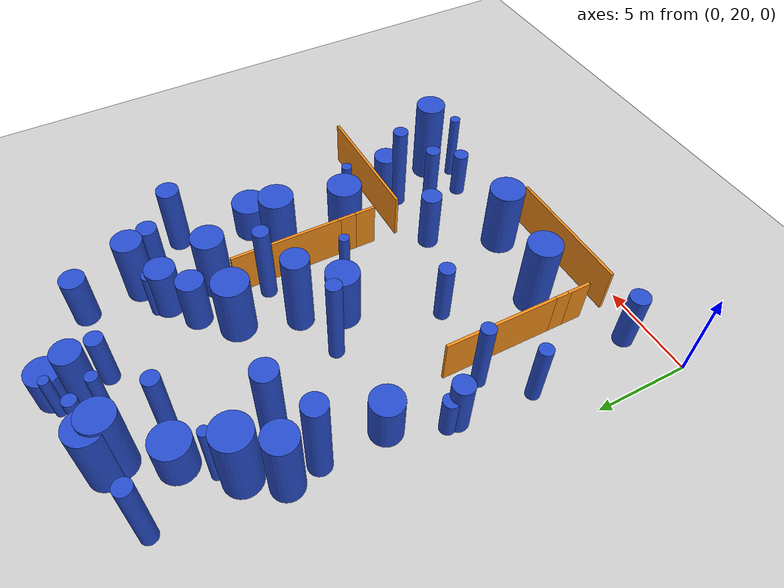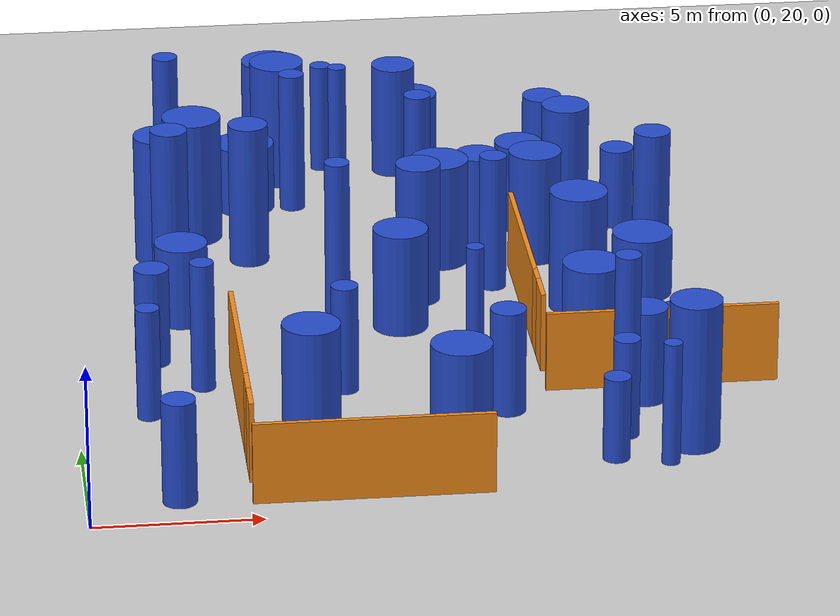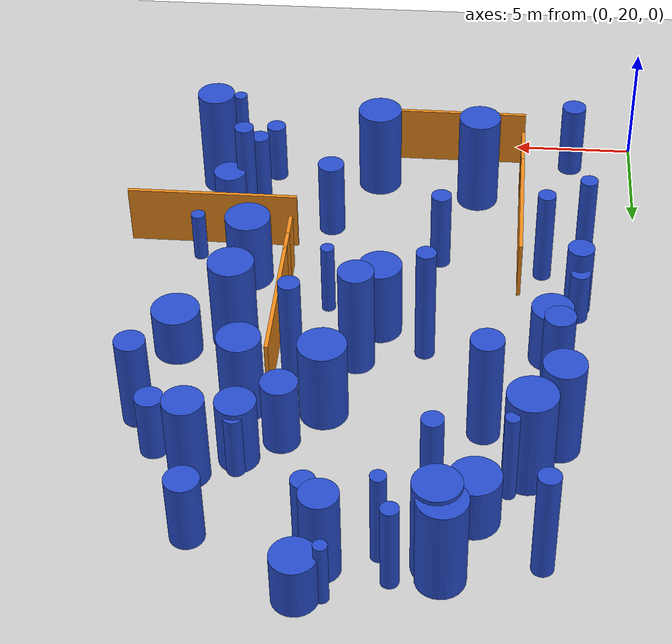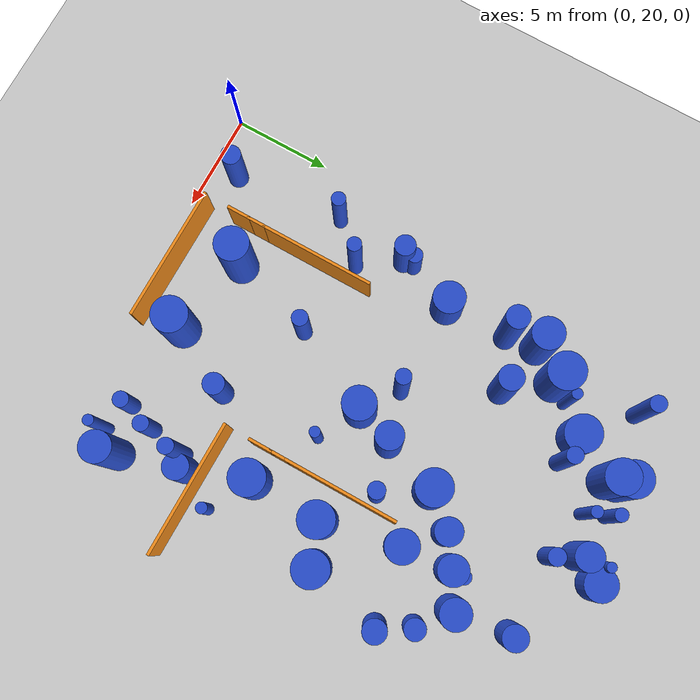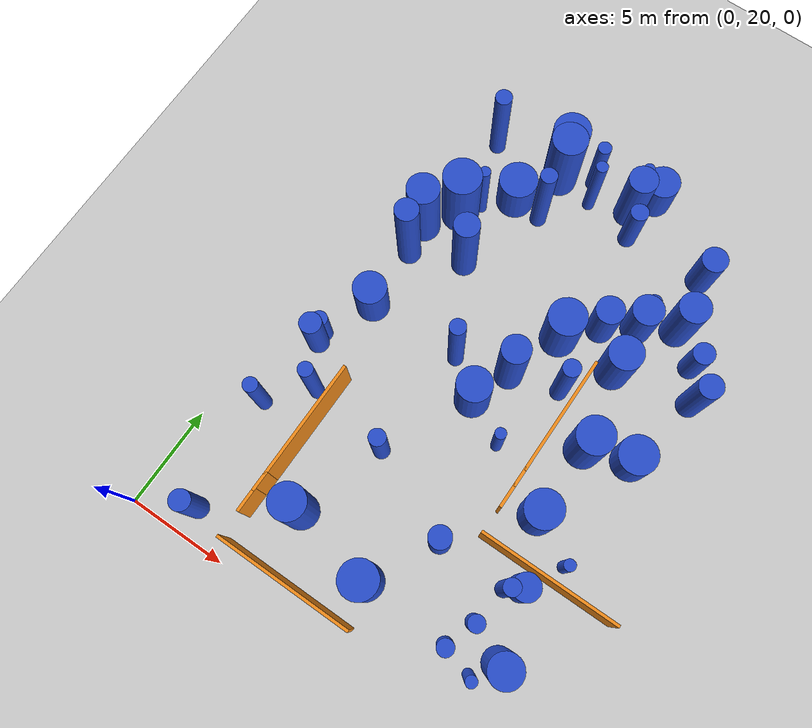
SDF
<sdf version="1.6">
 <world name="default">
  <model name="ground_plane">
   <static>1</static>
   <link name="link">
    <collision name="collision">
     <geometry><plane><normal>0 0 1</normal><size>100 100</size></plane></geometry>
     <surface><friction><ode><mu>100</mu><mu2>50</mu2></ode></friction></surface>
    </collision>
    <visual name="visual">
     <cast_shadows>0</cast_shadows>
     <geometry><plane><normal>0 0 1</normal><size>100 100</size></plane></geometry>
     <material>
      <script><uri>file://media/materials/scripts/gazebo.material</uri><name>Gazebo/Grey</name></script>
     </material>
    </visual>
   </link>
  </model>
  <model name="3">
   <static>0</static>
   <link name="link">
    <inertial>
     <mass>2</mass>
     <inertia><ixx>1.27106</ixx><ixy>0</ixy><ixz>0</ixz><iyy>1.27106</iyy><iyz>0</iyz><izz>0.895913</izz></inertia>
    </inertial>
    <collision name="collision">
     <geometry><cylinder><length>2.2223</length><radius>0.946527</radius></cylinder></geometry>
     <surface><contact><collide_without_contact>1</collide_without_contact></contact></surface>
    </collision>
    <visual name="visual">
     <geometry><cylinder><length>2.2223</length><radius>0.946527</radius></cylinder></geometry>
     <material>
      <script><uri>file://media/materials/scripts/gazebo.material</uri><name>Gazebo/Blue</name></script>
     </material>
    </visual>
    <gravity>0</gravity>
   </link>
   <pose>6.2225 42.677 1.11115 0 -0 0</pose>
  </model>
  <model name="9">
   <static>0</static>
   <link name="link">
    <inertial>
     <mass>2</mass>
     <inertia><ixx>2.4622</ixx><ixy>0</ixy><ixz>0</ixz><iyy>2.4622</iyy><iyz>0</iyz><izz>0.0741787</izz></inertia>
    </inertial>
    <collision name="collision">
     <geometry><cylinder><length>3.81453</length><radius>0.272358</radius></cylinder></geometry>
     <surface><contact><collide_without_contact>1</collide_without_contact></contact></surface>
    </collision>
    <visual name="visual">
     <geometry><cylinder><length>3.81453</length><radius>0.272358</radius></cylinder></geometry>
     <material>
      <script><uri>file://media/materials/scripts/gazebo.material</uri><name>Gazebo/Blue</name></script>
     </material>
    </visual>
    <gravity>0</gravity>
   </link>
   <pose>16.9794 22.3718 1.90727 0 -0 0</pose>
  </model>
  <model name="13">
   <static>0</static>
   <link name="link">
    <inertial>
     <mass>2</mass>
     <inertia><ixx>1.65318</ixx><ixy>0</ixy><ixz>0</ixz><iyy>1.65318</iyy><iyz>0</iyz><izz>0.578017</izz></inertia>
    </inertial>
    <collision name="collision">
     <geometry><cylinder><length>2.86095</length><radius>0.760275</radius></cylinder></geometry>
     <surface><contact><collide_without_contact>1</collide_without_contact></contact></surface>
    </collision>
    <visual name="visual">
     <geometry><cylinder><length>2.86095</length><radius>0.760275</radius></cylinder></geometry>
     <material>
      <script><uri>file://media/materials/scripts/gazebo.material</uri><name>Gazebo/Blue</name></script>
     </material>
    </visual>
    <gravity>0</gravity>
   </link>
   <pose>14.8082 40.254 1.43047 0 -0 0</pose>
  </model>
  <model name="15">
   <static>0</static>
   <link name="link">
    <inertial>
     <mass>2</mass>
     <inertia><ixx>2.02878</ixx><ixy>0</ixy><ixz>0</ixz><iyy>2.02878</iyy><iyz>0</iyz><izz>0.837732</izz></inertia>
    </inertial>
    <collision name="collision">
     <geometry><cylinder><length>3.10797</length><radius>0.915277</radius></cylinder></geometry>
     <surface><contact><collide_without_contact>1</collide_without_contact></contact></surface>
    </collision>
    <visual name="visual">
     <geometry><cylinder><length>3.10797</length><radius>0.915277</radius></cylinder></geometry>
     <material>
      <script><uri>file://media/materials/scripts/gazebo.material</uri><name>Gazebo/Blue</name></script>
     </material>
    </visual>
    <gravity>0</gravity>
   </link>
   <pose>15.7285 29.9287 1.55399 0 -0 0</pose>
  </model>
  <model name="21">
   <static>0</static>
   <link name="link">
    <inertial>
     <mass>2</mass>
     <inertia>
      <ixx>0.942504</ixx>
      <ixy>0</ixy>
      <ixz>0</ixz>
      <iyy>0.942504</iyy>
      <iyz>0</iyz>
      <izz>0.157121</izz>
     </inertia>
    </inertial>
    <collision name="collision">
     <geometry><cylinder><length>2.27677</length><radius>0.396385</radius></cylinder></geometry>
     <surface><contact><collide_without_contact>1</collide_without_contact></contact></surface>
    </collision>
    <visual name="visual">
     <geometry><cylinder><length>2.27677</length><radius>0.396385</radius></cylinder></geometry>
     <material>
      <script><uri>file://media/materials/scripts/gazebo.material</uri><name>Gazebo/Blue</name></script>
     </material>
    </visual>
    <gravity>0</gravity>
   </link>
   <pose>2.46046 31.5423 1.13838 0 -0 0</pose>
  </model>
  <model name="29">
   <static>0</static>
   <link name="link">
    <inertial>
     <mass>2</mass>
     <inertia><ixx>1.13627</ixx><ixy>0</ixy><ixz>0</ixz><iyy>1.13627</iyy><iyz>0</iyz><izz>0.890575</izz></inertia>
    </inertial>
    <collision name="collision">
     <geometry><cylinder><length>2.03615</length><radius>0.943703</radius></cylinder></geometry>
     <surface><contact><collide_without_contact>1</collide_without_contact></contact></surface>
    </collision>
    <visual name="visual">
     <geometry><cylinder><length>2.03615</length><radius>0.943703</radius></cylinder></geometry>
     <material>
      <script><uri>file://media/materials/scripts/gazebo.material</uri><name>Gazebo/Blue</name></script>
     </material>
    </visual>
    <gravity>0</gravity>
   </link>
   <pose>17.9595 34.4953 1.01807 0 -0 0</pose>
  </model>
  <model name="33">
   <static>0</static>
   <link name="link">
    <inertial>
     <mass>2</mass>
     <inertia><ixx>3.34107</ixx><ixy>0</ixy><ixz>0</ixz><iyy>3.34107</iyy><iyz>0</iyz><izz>0.741521</izz></inertia>
    </inertial>
    <collision name="collision">
     <geometry><cylinder><length>4.22159</length><radius>0.861116</radius></cylinder></geometry>
     <surface><contact><collide_without_contact>1</collide_without_contact></contact></surface>
    </collision>
    <visual name="visual">
     <geometry><cylinder><length>4.22159</length><radius>0.861116</radius></cylinder></geometry>
     <material>
      <script><uri>file://media/materials/scripts/gazebo.material</uri><name>Gazebo/Blue</name></script>
     </material>
    </visual>
    <gravity>0</gravity>
   </link>
   <pose>6.66878 23.9628 2.1108 0 -0 0</pose>
  </model>
  <model name="34">
   <static>0</static>
   <link name="link">
    <inertial>
     <mass>2</mass>
     <inertia><ixx>1.44194</ixx><ixy>0</ixy><ixz>0</ixz><iyy>1.44194</iyy><iyz>0</iyz><izz>0.671354</izz></inertia>
    </inertial>
    <collision name="collision">
     <geometry><cylinder><length>2.57635</length><radius>0.819362</radius></cylinder></geometry>
     <surface><contact><collide_without_contact>1</collide_without_contact></contact></surface>
    </collision>
    <visual name="visual">
     <geometry><cylinder><length>2.57635</length><radius>0.819362</radius></cylinder></geometry>
     <material>
      <script><uri>file://media/materials/scripts/gazebo.material</uri><name>Gazebo/Blue</name></script>
     </material>
    </visual>
    <gravity>0</gravity>
   </link>
   <pose>3.57515 34.0262 1.28817 0 -0 0</pose>
  </model>
  <model name="49">
   <static>0</static>
   <link name="link">
    <inertial>
     <mass>2</mass>
     <inertia><ixx>2.53938</ixx><ixy>0</ixy><ixz>0</ixz><iyy>2.53938</iyy><iyz>0</iyz><izz>0.580052</izz></inertia>
    </inertial>
    <collision name="collision">
     <geometry><cylinder><length>3.67371</length><radius>0.761611</radius></cylinder></geometry>
     <surface><contact><collide_without_contact>1</collide_without_contact></contact></surface>
    </collision>
    <visual name="visual">
     <geometry><cylinder><length>3.67371</length><radius>0.761611</radius></cylinder></geometry>
     <material>
      <script><uri>file://media/materials/scripts/gazebo.material</uri><name>Gazebo/Blue</name></script>
     </material>
    </visual>
    <gravity>0</gravity>
   </link>
   <pose>16.4595 41.1875 1.83685 0 -0 0</pose>
  </model>
  <model name="52">
   <static>0</static>
   <link name="link">
    <inertial>
     <mass>2</mass>
     <inertia><ixx>3.32112</ixx><ixy>0</ixy><ixz>0</ixz><iyy>3.32112</iyy><iyz>0</iyz><izz>0.180098</izz></inertia>
    </inertial>
    <collision name="collision">
     <geometry><cylinder><length>4.40301</length><radius>0.42438</radius></cylinder></geometry>
     <surface><contact><collide_without_contact>1</collide_without_contact></contact></surface>
    </collision>
    <visual name="visual">
     <geometry><cylinder><length>4.40301</length><radius>0.42438</radius></cylinder></geometry>
     <material>
      <script><uri>file://media/materials/scripts/gazebo.material</uri><name>Gazebo/Blue</name></script>
     </material>
    </visual>
    <gravity>0</gravity>
   </link>
   <pose>13.3984 35.4669 2.2015 0 -0 0</pose>
  </model>
  <model name="58">
   <static>0</static>
   <link name="link">
    <inertial>
     <mass>2</mass>
     <inertia><ixx>2.13713</ixx><ixy>0</ixy><ixz>0</ixz><iyy>2.13713</iyy><iyz>0</iyz><izz>0.129492</izz></inertia>
    </inertial>
    <collision name="collision">
     <geometry><cylinder><length>3.52623</length><radius>0.35985</radius></cylinder></geometry>
     <surface><contact><collide_without_contact>1</collide_without_contact></contact></surface>
    </collision>
    <visual name="visual">
     <geometry><cylinder><length>3.52623</length><radius>0.35985</radius></cylinder></geometry>
     <material>
      <script><uri>file://media/materials/scripts/gazebo.material</uri><name>Gazebo/Blue</name></script>
     </material>
    </visual>
    <gravity>0</gravity>
   </link>
   <pose>2.13297 27.1405 1.76312 0 -0 0</pose>
  </model>
  <model name="59">
   <static>0</static>
   <link name="link">
    <inertial>
     <mass>2</mass>
     <inertia><ixx>1.95679</ixx><ixy>0</ixy><ixz>0</ixz><iyy>1.95679</iyy><iyz>0</iyz><izz>0.291907</izz></inertia>
    </inertial>
    <collision name="collision">
     <geometry><cylinder><length>3.29622</length><radius>0.540284</radius></cylinder></geometry>
     <surface><contact><collide_without_contact>1</collide_without_contact></contact></surface>
    </collision>
    <visual name="visual">
     <geometry><cylinder><length>3.29622</length><radius>0.540284</radius></cylinder></geometry>
     <material>
      <script><uri>file://media/materials/scripts/gazebo.material</uri><name>Gazebo/Blue</name></script>
     </material>
    </visual>
    <gravity>0</gravity>
   </link>
   <pose>12.7214 26.4089 1.64811 0 -0 0</pose>
  </model>
  <model name="63">
   <static>0</static>
   <link name="link">
    <inertial>
     <mass>2</mass>
     <inertia><ixx>3.63749</ixx><ixy>0</ixy><ixz>0</ixz><iyy>3.63749</iyy><iyz>0</iyz><izz>0.165125</izz></inertia>
    </inertial>
    <collision name="collision">
     <geometry><cylinder><length>4.61839</length><radius>0.406356</radius></cylinder></geometry>
     <surface><contact><collide_without_contact>1</collide_without_contact></contact></surface>
    </collision>
    <visual name="visual">
     <geometry><cylinder><length>4.61839</length><radius>0.406356</radius></cylinder></geometry>
     <material>
      <script><uri>file://media/materials/scripts/gazebo.material</uri><name>Gazebo/Blue</name></script>
     </material>
    </visual>
    <gravity>0</gravity>
   </link>
   <pose>7.74254 42.4668 2.3092 0 -0 0</pose>
  </model>
  <model name="65">
   <static>0</static>
   <link name="link">
    <inertial>
     <mass>2</mass>
     <inertia><ixx>2.6533</ixx><ixy>0</ixy><ixz>0</ixz><iyy>2.6533</iyy><iyz>0</iyz><izz>0.0866099</izz></inertia>
    </inertial>
    <collision name="collision">
     <geometry><cylinder><length>3.95727</length><radius>0.294296</radius></cylinder></geometry>
     <surface><contact><collide_without_contact>1</collide_without_contact></contact></surface>
    </collision>
    <visual name="visual">
     <geometry><cylinder><length>3.95727</length><radius>0.294296</radius></cylinder></geometry>
     <material>
      <script><uri>file://media/materials/scripts/gazebo.material</uri><name>Gazebo/Blue</name></script>
     </material>
    </visual>
    <gravity>0</gravity>
   </link>
   <pose>9.41371 44.5715 1.97863 0 -0 0</pose>
  </model>
  <model name="73">
   <static>0</static>
   <link name="link">
    <inertial>
     <mass>2</mass>
     <inertia><ixx>3.46252</ixx><ixy>0</ixy><ixz>0</ixz><iyy>3.46252</iyy><iyz>0</iyz><izz>0.167868</izz></inertia>
    </inertial>
    <collision name="collision">
     <geometry><cylinder><length>4.50239</length><radius>0.409717</radius></cylinder></geometry>
     <surface><contact><collide_without_contact>1</collide_without_contact></contact></surface>
    </collision>
    <visual name="visual">
     <geometry><cylinder><length>4.50239</length><radius>0.409717</radius></cylinder></geometry>
     <material>
      <script><uri>file://media/materials/scripts/gazebo.material</uri><name>Gazebo/Blue</name></script>
     </material>
    </visual>
    <gravity>0</gravity>
   </link>
   <pose>3.82424 44.7196 2.25119 0 -0 0</pose>
  </model>
  <model name="88">
   <static>0</static>
   <link name="link">
    <inertial>
     <mass>2</mass>
     <inertia><ixx>2.81885</ixx><ixy>0</ixy><ixz>0</ixz><iyy>2.81885</iyy><iyz>0</iyz><izz>0.82529</izz></inertia>
    </inertial>
    <collision name="collision">
     <geometry><cylinder><length>3.79964</length><radius>0.908455</radius></cylinder></geometry>
     <surface><contact><collide_without_contact>1</collide_without_contact></contact></surface>
    </collision>
    <visual name="visual">
     <geometry><cylinder><length>3.79964</length><radius>0.908455</radius></cylinder></geometry>
     <material>
      <script><uri>file://media/materials/scripts/gazebo.material</uri><name>Gazebo/Blue</name></script>
     </material>
    </visual>
    <gravity>0</gravity>
   </link>
   <pose>10.9315 23.045 1.89982 0 -0 0</pose>
  </model>
  <model name="99">
   <static>0</static>
   <link name="link">
    <inertial>
     <mass>2</mass>
     <inertia><ixx>2.01084</ixx><ixy>0</ixy><ixz>0</ixz><iyy>2.01084</iyy><iyz>0</iyz><izz>0.169037</izz></inertia>
    </inertial>
    <collision name="collision">
     <geometry><cylinder><length>3.39969</length><radius>0.411142</radius></cylinder></geometry>
     <surface><contact><collide_without_contact>1</collide_without_contact></contact></surface>
    </collision>
    <visual name="visual">
     <geometry><cylinder><length>3.39969</length><radius>0.411142</radius></cylinder></geometry>
     <material>
      <script><uri>file://media/materials/scripts/gazebo.material</uri><name>Gazebo/Blue</name></script>
     </material>
    </visual>
    <gravity>0</gravity>
   </link>
   <pose>8.06943 28.385 1.69985 0 -0 0</pose>
  </model>
  <model name="101">
   <static>0</static>
   <link name="link">
    <inertial>
     <mass>2</mass>
     <inertia><ixx>2.85249</ixx><ixy>0</ixy><ixz>0</ixz><iyy>2.85249</iyy><iyz>0</iyz><izz>0.131371</izz></inertia>
    </inertial>
    <collision name="collision">
     <geometry><cylinder><length>4.08911</length><radius>0.362452</radius></cylinder></geometry>
     <surface><contact><collide_without_contact>1</collide_without_contact></contact></surface>
    </collision>
    <visual name="visual">
     <geometry><cylinder><length>4.08911</length><radius>0.362452</radius></cylinder></geometry>
     <material>
      <script><uri>file://media/materials/scripts/gazebo.material</uri><name>Gazebo/Blue</name></script>
     </material>
    </visual>
    <gravity>0</gravity>
   </link>
   <pose>3.87288 28.9892 2.04456 0 -0 0</pose>
  </model>
  <model name="112">
   <static>0</static>
   <link name="link">
    <inertial>
     <mass>2</mass>
     <inertia><ixx>2.52955</ixx><ixy>0</ixy><ixz>0</ixz><iyy>2.52955</iyy><iyz>0</iyz><izz>0.495649</izz></inertia>
    </inertial>
    <collision name="collision">
     <geometry><cylinder><length>3.70005</length><radius>0.704024</radius></cylinder></geometry>
     <surface><contact><collide_without_contact>1</collide_without_contact></contact></surface>
    </collision>
    <visual name="visual">
     <geometry><cylinder><length>3.70005</length><radius>0.704024</radius></cylinder></geometry>
     <material>
      <script><uri>file://media/materials/scripts/gazebo.material</uri><name>Gazebo/Blue</name></script>
     </material>
    </visual>
    <gravity>0</gravity>
   </link>
   <pose>11.3212 45.2536 1.85003 0 -0 0</pose>
  </model>
  <model name="115">
   <static>0</static>
   <link name="link">
    <inertial>
     <mass>2</mass>
     <inertia>
      <ixx>2.45331</ixx>
      <ixy>0</ixy>
      <ixz>0</ixz>
      <iyy>2.45331</iyy>
      <iyz>0</iyz>
      <izz>0.0722573</izz>
     </inertia>
    </inertial>
    <collision name="collision">
     <geometry><cylinder><length>3.8083</length><radius>0.268807</radius></cylinder></geometry>
     <surface><contact><collide_without_contact>1</collide_without_contact></contact></surface>
    </collision>
    <visual name="visual">
     <geometry><cylinder><length>3.8083</length><radius>0.268807</radius></cylinder></geometry>
     <material>
      <script><uri>file://media/materials/scripts/gazebo.material</uri><name>Gazebo/Blue</name></script>
     </material>
    </visual>
    <gravity>0</gravity>
   </link>
   <pose>5.03865 41.3757 1.90415 0 -0 0</pose>
  </model>
  <model name="122">
   <static>0</static>
   <link name="link">
    <inertial>
     <mass>2</mass>
     <inertia><ixx>1.87042</ixx><ixy>0</ixy><ixz>0</ixz><iyy>1.87042</iyy><iyz>0</iyz><izz>0.254902</izz></inertia>
    </inertial>
    <collision name="collision">
     <geometry><cylinder><length>3.23386</length><radius>0.504878</radius></cylinder></geometry>
     <surface><contact><collide_without_contact>1</collide_without_contact></contact></surface>
    </collision>
    <visual name="visual">
     <geometry><cylinder><length>3.23386</length><radius>0.504878</radius></cylinder></geometry>
     <material>
      <script><uri>file://media/materials/scripts/gazebo.material</uri><name>Gazebo/Blue</name></script>
     </material>
    </visual>
    <gravity>0</gravity>
   </link>
   <pose>2.64636 21.4148 1.61693 0 -0 0</pose>
  </model>
  <model name="126">
   <static>0</static>
   <link name="link">
    <inertial>
     <mass>2</mass>
     <inertia><ixx>3.65056</ixx><ixy>0</ixy><ixz>0</ixz><iyy>3.65056</iyy><iyz>0</iyz><izz>0.476539</izz></inertia>
    </inertial>
    <collision name="collision">
     <geometry><cylinder><length>4.52479</length><radius>0.690318</radius></cylinder></geometry>
     <surface><contact><collide_without_contact>1</collide_without_contact></contact></surface>
    </collision>
    <visual name="visual">
     <geometry><cylinder><length>4.52479</length><radius>0.690318</radius></cylinder></geometry>
     <material>
      <script><uri>file://media/materials/scripts/gazebo.material</uri><name>Gazebo/Blue</name></script>
     </material>
    </visual>
    <gravity>0</gravity>
   </link>
   <pose>10.9775 34.793 2.26239 0 -0 0</pose>
  </model>
  <model name="131">
   <static>0</static>
   <link name="link">
    <inertial>
     <mass>2</mass>
     <inertia>
      <ixx>0.803513</ixx>
      <ixy>0</ixy>
      <ixz>0</ixz>
      <iyy>0.803513</iyy>
      <iyz>0</iyz>
      <izz>0.0823005</izz>
     </inertia>
    </inertial>
    <collision name="collision">
     <geometry><cylinder><length>2.13873</length><radius>0.286881</radius></cylinder></geometry>
     <surface><contact><collide_without_contact>1</collide_without_contact></contact></surface>
    </collision>
    <visual name="visual">
     <geometry><cylinder><length>2.13873</length><radius>0.286881</radius></cylinder></geometry>
     <material>
      <script><uri>file://media/materials/scripts/gazebo.material</uri><name>Gazebo/Blue</name></script>
     </material>
    </visual>
    <gravity>0</gravity>
   </link>
   <pose>17.9805 28.6605 1.06937 0 -0 0</pose>
  </model>
  <model name="134">
   <static>0</static>
   <link name="link">
    <inertial>
     <mass>2</mass>
     <inertia><ixx>1.28456</ixx><ixy>0</ixy><ixz>0</ixz><iyy>1.28456</iyy><iyz>0</iyz><izz>0.284508</izz></inertia>
    </inertial>
    <collision name="collision">
     <geometry><cylinder><length>2.61799</length><radius>0.533393</radius></cylinder></geometry>
     <surface><contact><collide_without_contact>1</collide_without_contact></contact></surface>
    </collision>
    <visual name="visual">
     <geometry><cylinder><length>2.61799</length><radius>0.533393</radius></cylinder></geometry>
     <material>
      <script><uri>file://media/materials/scripts/gazebo.material</uri><name>Gazebo/Blue</name></script>
     </material>
    </visual>
    <gravity>0</gravity>
   </link>
   <pose>17.9562 39.9915 1.30899 0 -0 0</pose>
  </model>
  <model name="139">
   <static>0</static>
   <link name="link">
    <inertial>
     <mass>2</mass>
     <inertia><ixx>3.22486</ixx><ixy>0</ixy><ixz>0</ixz><iyy>3.22486</iyy><iyz>0</iyz><izz>0.874221</izz></inertia>
    </inertial>
    <collision name="collision">
     <geometry><cylinder><length>4.0898</length><radius>0.934998</radius></cylinder></geometry>
     <surface><contact><collide_without_contact>1</collide_without_contact></contact></surface>
    </collision>
    <visual name="visual">
     <geometry><cylinder><length>4.0898</length><radius>0.934998</radius></cylinder></geometry>
     <material>
      <script><uri>file://media/materials/scripts/gazebo.material</uri><name>Gazebo/Blue</name></script>
     </material>
    </visual>
    <gravity>0</gravity>
   </link>
   <pose>4.3738 40.4624 2.0449 0 -0 0</pose>
  </model>
  <model name="144">
   <static>0</static>
   <link name="link">
    <inertial>
     <mass>2</mass>
     <inertia><ixx>2.12755</ixx><ixy>0</ixy><ixz>0</ixz><iyy>2.12755</iyy><iyz>0</iyz><izz>0.723564</izz></inertia>
    </inertial>
    <collision name="collision">
     <geometry><cylinder><length>3.25494</length><radius>0.850626</radius></cylinder></geometry>
     <surface><contact><collide_without_contact>1</collide_without_contact></contact></surface>
    </collision>
    <visual name="visual">
     <geometry><cylinder><length>3.25494</length><radius>0.850626</radius></cylinder></geometry>
     <material>
      <script><uri>file://media/materials/scripts/gazebo.material</uri><name>Gazebo/Blue</name></script>
     </material>
    </visual>
    <gravity>0</gravity>
   </link>
   <pose>10.2162 32.7833 1.62747 0 -0 0</pose>
  </model>
  <model name="148">
   <static>0</static>
   <link name="link">
    <inertial>
     <mass>2</mass>
     <inertia><ixx>2.40063</ixx><ixy>0</ixy><ixz>0</ixz><iyy>2.40063</iyy><iyz>0</iyz><izz>0.848115</izz></inertia>
    </inertial>
    <collision name="collision">
     <geometry><cylinder><length>3.44375</length><radius>0.920932</radius></cylinder></geometry>
     <surface><contact><collide_without_contact>1</collide_without_contact></contact></surface>
    </collision>
    <visual name="visual">
     <geometry><cylinder><length>3.44375</length><radius>0.920932</radius></cylinder></geometry>
     <material>
      <script><uri>file://media/materials/scripts/gazebo.material</uri><name>Gazebo/Blue</name></script>
     </material>
    </visual>
    <gravity>0</gravity>
   </link>
   <pose>11.9658 37.6897 1.72188 0 -0 0</pose>
  </model>
  <model name="150">
   <static>0</static>
   <link name="link">
    <inertial>
     <mass>2</mass>
     <inertia><ixx>2.57688</ixx><ixy>0</ixy><ixz>0</ixz><iyy>2.57688</iyy><iyz>0</iyz><izz>0.341913</izz></inertia>
    </inertial>
    <collision name="collision">
     <geometry><cylinder><length>3.79941</length><radius>0.584733</radius></cylinder></geometry>
     <surface><contact><collide_without_contact>1</collide_without_contact></contact></surface>
    </collision>
    <visual name="visual">
     <geometry><cylinder><length>3.79941</length><radius>0.584733</radius></cylinder></geometry>
     <material>
      <script><uri>file://media/materials/scripts/gazebo.material</uri><name>Gazebo/Blue</name></script>
     </material>
    </visual>
    <gravity>0</gravity>
   </link>
   <pose>18.838 38.3785 1.89971 0 -0 0</pose>
  </model>
  <model name="153">
   <static>0</static>
   <link name="link">
    <inertial>
     <mass>2</mass>
     <inertia><ixx>1.69776</ixx><ixy>0</ixy><ixz>0</ixz><iyy>1.69776</iyy><iyz>0</iyz><izz>0.423456</izz></inertia>
    </inertial>
    <collision name="collision">
     <geometry><cylinder><length>2.986</length><radius>0.650735</radius></cylinder></geometry>
     <surface><contact><collide_without_contact>1</collide_without_contact></contact></surface>
    </collision>
    <visual name="visual">
     <geometry><cylinder><length>2.986</length><radius>0.650735</radius></cylinder></geometry>
     <material>
      <script><uri>file://media/materials/scripts/gazebo.material</uri><name>Gazebo/Blue</name></script>
     </material>
    </visual>
    <gravity>0</gravity>
   </link>
   <pose>16.8882 26.7755 1.493 0 -0 0</pose>
  </model>
  <model name="159">
   <static>0</static>
   <link name="link">
    <inertial>
     <mass>2</mass>
     <inertia><ixx>1.5537</ixx><ixy>0</ixy><ixz>0</ixz><iyy>1.5537</iyy><iyz>0</iyz><izz>0.403807</izz></inertia>
    </inertial>
    <collision name="collision">
     <geometry><cylinder><length>2.84794</length><radius>0.635458</radius></cylinder></geometry>
     <surface><contact><collide_without_contact>1</collide_without_contact></contact></surface>
    </collision>
    <visual name="visual">
     <geometry><cylinder><length>2.84794</length><radius>0.635458</radius></cylinder></geometry>
     <material>
      <script><uri>file://media/materials/scripts/gazebo.material</uri><name>Gazebo/Blue</name></script>
     </material>
    </visual>
    <gravity>0</gravity>
   </link>
   <pose>16.0865 44.1131 1.42397 0 -0 0</pose>
  </model>
  <model name="168">
   <static>0</static>
   <link name="link">
    <inertial>
     <mass>2</mass>
     <inertia><ixx>3.86097</ixx><ixy>0</ixy><ixz>0</ixz><iyy>3.86097</iyy><iyz>0</iyz><izz>0.602433</izz></inertia>
    </inertial>
    <collision name="collision">
     <geometry><cylinder><length>4.62153</length><radius>0.776166</radius></cylinder></geometry>
     <surface><contact><collide_without_contact>1</collide_without_contact></contact></surface>
    </collision>
    <visual name="visual">
     <geometry><cylinder><length>4.62153</length><radius>0.776166</radius></cylinder></geometry>
     <material>
      <script><uri>file://media/materials/scripts/gazebo.material</uri><name>Gazebo/Blue</name></script>
     </material>
    </visual>
    <gravity>0</gravity>
   </link>
   <pose>17.8247 23.5073 2.31076 0 -0 0</pose>
  </model>
  <model name="175">
   <static>0</static>
   <link name="link">
    <inertial>
     <mass>2</mass>
     <inertia>
      <ixx>1.59317</ixx>
      <ixy>0</ixy>
      <ixz>0</ixz>
      <iyy>1.59317</iyy>
      <iyz>0</iyz>
      <izz>0.0750365</izz>
     </inertia>
    </inertial>
    <collision name="collision">
     <geometry><cylinder><length>3.05515</length><radius>0.273928</radius></cylinder></geometry>
     <surface><contact><collide_without_contact>1</collide_without_contact></contact></surface>
    </collision>
    <visual name="visual">
     <geometry><cylinder><length>3.05515</length><radius>0.273928</radius></cylinder></geometry>
     <material>
      <script><uri>file://media/materials/scripts/gazebo.material</uri><name>Gazebo/Blue</name></script>
     </material>
    </visual>
    <gravity>0</gravity>
   </link>
   <pose>12.3757 31.6197 1.52757 0 -0 0</pose>
  </model>
  <model name="178">
   <static>0</static>
   <link name="link">
    <inertial>
     <mass>2</mass>
     <inertia><ixx>1.10158</ixx><ixy>0</ixy><ixz>0</ixz><iyy>1.10158</iyy><iyz>0</iyz><izz>0.694112</izz></inertia>
    </inertial>
    <collision name="collision">
     <geometry><cylinder><length>2.12771</length><radius>0.833134</radius></cylinder></geometry>
     <surface><contact><collide_without_contact>1</collide_without_contact></contact></surface>
    </collision>
    <visual name="visual">
     <geometry><cylinder><length>2.12771</length><radius>0.833134</radius></cylinder></geometry>
     <material>
      <script><uri>file://media/materials/scripts/gazebo.material</uri><name>Gazebo/Blue</name></script>
     </material>
    </visual>
    <gravity>0</gravity>
   </link>
   <pose>12.0633 46.5837 1.06386 0 -0 0</pose>
  </model>
  <model name="179">
   <static>0</static>
   <link name="link">
    <inertial>
     <mass>2</mass>
     <inertia><ixx>4.21717</ixx><ixy>0</ixy><ixz>0</ixz><iyy>4.21717</iyy><iyz>0</iyz><izz>0.150288</izz></inertia>
    </inertial>
    <collision name="collision">
     <geometry><cylinder><length>4.98519</length><radius>0.387669</radius></cylinder></geometry>
     <surface><contact><collide_without_contact>1</collide_without_contact></contact></surface>
    </collision>
    <visual name="visual">
     <geometry><cylinder><length>4.98519</length><radius>0.387669</radius></cylinder></geometry>
     <material>
      <script><uri>file://media/materials/scripts/gazebo.material</uri><name>Gazebo/Blue</name></script>
     </material>
    </visual>
    <gravity>0</gravity>
   </link>
   <pose>8.40302 34.0732 2.4926 0 -0 0</pose>
  </model>
  <model name="183">
   <static>0</static>
   <link name="link">
    <inertial>
     <mass>2</mass>
     <inertia><ixx>2.49307</ixx><ixy>0</ixy><ixz>0</ixz><iyy>2.49307</iyy><iyz>0</iyz><izz>0.692048</izz></inertia>
    </inertial>
    <collision name="collision">
     <geometry><cylinder><length>3.58919</length><radius>0.831894</radius></cylinder></geometry>
     <surface><contact><collide_without_contact>1</collide_without_contact></contact></surface>
    </collision>
    <visual name="visual">
     <geometry><cylinder><length>3.58919</length><radius>0.831894</radius></cylinder></geometry>
     <material>
      <script><uri>file://media/materials/scripts/gazebo.material</uri><name>Gazebo/Blue</name></script>
     </material>
    </visual>
    <gravity>0</gravity>
   </link>
   <pose>15.005 37.6789 1.79459 0 -0 0</pose>
  </model>
  <model name="185">
   <static>0</static>
   <link name="link">
    <inertial>
     <mass>2</mass>
     <inertia><ixx>4.28066</ixx><ixy>0</ixy><ixz>0</ixz><iyy>4.28066</iyy><iyz>0</iyz><izz>0.335671</izz></inertia>
    </inertial>
    <collision name="collision">
     <geometry><cylinder><length>4.96759</length><radius>0.579371</radius></cylinder></geometry>
     <surface><contact><collide_without_contact>1</collide_without_contact></contact></surface>
    </collision>
    <visual name="visual">
     <geometry><cylinder><length>4.96759</length><radius>0.579371</radius></cylinder></geometry>
     <material>
      <script><uri>file://media/materials/scripts/gazebo.material</uri><name>Gazebo/Blue</name></script>
     </material>
    </visual>
    <gravity>0</gravity>
   </link>
   <pose>3.46128 37.3119 2.4838 0 -0 0</pose>
  </model>
  <model name="195">
   <static>0</static>
   <link name="link">
    <inertial>
     <mass>2</mass>
     <inertia><ixx>2.86775</ixx><ixy>0</ixy><ixz>0</ixz><iyy>2.86775</iyy><iyz>0</iyz><izz>0.80804</izz></inertia>
    </inertial>
    <collision name="collision">
     <geometry><cylinder><length>3.84478</length><radius>0.898911</radius></cylinder></geometry>
     <surface><contact><collide_without_contact>1</collide_without_contact></contact></surface>
    </collision>
    <visual name="visual">
     <geometry><cylinder><length>3.84478</length><radius>0.898911</radius></cylinder></geometry>
     <material>
      <script><uri>file://media/materials/scripts/gazebo.material</uri><name>Gazebo/Blue</name></script>
     </material>
    </visual>
    <gravity>0</gravity>
   </link>
   <pose>15.8339 33.7072 1.92239 0 -0 0</pose>
  </model>
  <model name="200">
   <static>0</static>
   <link name="link">
    <inertial>
     <mass>2</mass>
     <inertia><ixx>1.22398</ixx><ixy>0</ixy><ixz>0</ixz><iyy>1.22398</iyy><iyz>0</iyz><izz>0.161374</izz></inertia>
    </inertial>
    <collision name="collision">
     <geometry><cylinder><length>2.61911</length><radius>0.401714</radius></cylinder></geometry>
     <surface><contact><collide_without_contact>1</collide_without_contact></contact></surface>
    </collision>
    <visual name="visual">
     <geometry><cylinder><length>2.61911</length><radius>0.401714</radius></cylinder></geometry>
     <material>
      <script><uri>file://media/materials/scripts/gazebo.material</uri><name>Gazebo/Blue</name></script>
     </material>
    </visual>
    <gravity>0</gravity>
   </link>
   <pose>15.4432 22.8217 1.30956 0 -0 0</pose>
  </model>
  <model name="202">
   <static>0</static>
   <link name="link">
    <inertial>
     <mass>2</mass>
     <inertia><ixx>2.22614</ixx><ixy>0</ixy><ixz>0</ixz><iyy>2.22614</iyy><iyz>0</iyz><izz>0.110093</izz></inertia>
    </inertial>
    <collision name="collision">
     <geometry><cylinder><length>3.60923</length><radius>0.331803</radius></cylinder></geometry>
     <surface><contact><collide_without_contact>1</collide_without_contact></contact></surface>
    </collision>
    <visual name="visual">
     <geometry><cylinder><length>3.60923</length><radius>0.331803</radius></cylinder></geometry>
     <material>
      <script><uri>file://media/materials/scripts/gazebo.material</uri><name>Gazebo/Blue</name></script>
     </material>
    </visual>
    <gravity>0</gravity>
   </link>
   <pose>8.9616 45.6701 1.80462 0 -0 0</pose>
  </model>
  <model name="205">
   <static>0</static>
   <link name="link">
    <inertial>
     <mass>2</mass>
     <inertia><ixx>1.67336</ixx><ixy>0</ixy><ixz>0</ixz><iyy>1.67336</iyy><iyz>0</iyz><izz>0.194667</izz></inertia>
    </inertial>
    <collision name="collision">
     <geometry><cylinder><length>3.07508</length><radius>0.441211</radius></cylinder></geometry>
     <surface><contact><collide_without_contact>1</collide_without_contact></contact></surface>
    </collision>
    <visual name="visual">
     <geometry><cylinder><length>3.07508</length><radius>0.441211</radius></cylinder></geometry>
     <material>
      <script><uri>file://media/materials/scripts/gazebo.material</uri><name>Gazebo/Blue</name></script>
     </material>
    </visual>
    <gravity>0</gravity>
   </link>
   <pose>11.9862 44.0638 1.53754 0 -0 0</pose>
  </model>
  <model name="208">
   <static>0</static>
   <link name="link">
    <inertial>
     <mass>2</mass>
     <inertia>
      <ixx>1.19227</ixx>
      <ixy>0</ixy>
      <ixz>0</ixz>
      <iyy>1.19227</iyy>
      <iyz>0</iyz>
      <izz>0.0647269</izz>
     </inertia>
    </inertial>
    <collision name="collision">
     <geometry><cylinder><length>2.63807</length><radius>0.254415</radius></cylinder></geometry>
     <surface><contact><collide_without_contact>1</collide_without_contact></contact></surface>
    </collision>
    <visual name="visual">
     <geometry><cylinder><length>2.63807</length><radius>0.254415</radius></cylinder></geometry>
     <material>
      <script><uri>file://media/materials/scripts/gazebo.material</uri><name>Gazebo/Blue</name></script>
     </material>
    </visual>
    <gravity>0</gravity>
   </link>
   <pose>11.167 46.5347 1.31904 0 -0 0</pose>
  </model>
  <model name="214">
   <static>0</static>
   <link name="link">
    <inertial>
     <mass>2</mass>
     <inertia><ixx>2.98357</ixx><ixy>0</ixy><ixz>0</ixz><iyy>2.98357</iyy><iyz>0</iyz><izz>0.80653</izz></inertia>
    </inertial>
    <collision name="collision">
     <geometry><cylinder><length>3.9347</length><radius>0.89807</radius></cylinder></geometry>
     <surface><contact><collide_without_contact>1</collide_without_contact></contact></surface>
    </collision>
    <visual name="visual">
     <geometry><cylinder><length>3.9347</length><radius>0.89807</radius></cylinder></geometry>
     <material>
      <script><uri>file://media/materials/scripts/gazebo.material</uri><name>Gazebo/Blue</name></script>
     </material>
    </visual>
    <gravity>0</gravity>
   </link>
   <pose>7.26378 45.442 1.96735 0 -0 0</pose>
  </model>
  <model name="215">
   <static>0</static>
   <link name="link">
    <inertial>
     <mass>2</mass>
     <inertia><ixx>3.75699</ixx><ixy>0</ixy><ixz>0</ixz><iyy>3.75699</iyy><iyz>0</iyz><izz>0.388409</izz></inertia>
    </inertial>
    <collision name="collision">
     <geometry><cylinder><length>4.6235</length><radius>0.623225</radius></cylinder></geometry>
     <surface><contact><collide_without_contact>1</collide_without_contact></contact></surface>
    </collision>
    <visual name="visual">
     <geometry><cylinder><length>4.6235</length><radius>0.623225</radius></cylinder></geometry>
     <material>
      <script><uri>file://media/materials/scripts/gazebo.material</uri><name>Gazebo/Blue</name></script>
     </material>
    </visual>
    <gravity>0</gravity>
   </link>
   <pose>6.01073 38.3552 2.31175 0 -0 0</pose>
  </model>
  <model name="220">
   <static>0</static>
   <link name="link">
    <inertial>
     <mass>2</mass>
     <inertia><ixx>1.73735</ixx><ixy>0</ixy><ixz>0</ixz><iyy>1.73735</iyy><iyz>0</iyz><izz>0.282029</izz></inertia>
    </inertial>
    <collision name="collision">
     <geometry><cylinder><length>3.09484</length><radius>0.531064</radius></cylinder></geometry>
     <surface><contact><collide_without_contact>1</collide_without_contact></contact></surface>
    </collision>
    <visual name="visual">
     <geometry><cylinder><length>3.09484</length><radius>0.531064</radius></cylinder></geometry>
     <material>
      <script><uri>file://media/materials/scripts/gazebo.material</uri><name>Gazebo/Blue</name></script>
     </material>
    </visual>
    <gravity>0</gravity>
   </link>
   <pose>2.48731 30.9961 1.54742 0 -0 0</pose>
  </model>
  <model name="231">
   <static>0</static>
   <link name="link">
    <inertial>
     <mass>2</mass>
     <inertia><ixx>3.18371</ixx><ixy>0</ixy><ixz>0</ixz><iyy>3.18371</iyy><iyz>0</iyz><izz>0.757303</izz></inertia>
    </inertial>
    <collision name="collision">
     <geometry><cylinder><length>4.10248</length><radius>0.870232</radius></cylinder></geometry>
     <surface><contact><collide_without_contact>1</collide_without_contact></contact></surface>
    </collision>
    <visual name="visual">
     <geometry><cylinder><length>4.10248</length><radius>0.870232</radius></cylinder></geometry>
     <material>
      <script><uri>file://media/materials/scripts/gazebo.material</uri><name>Gazebo/Blue</name></script>
     </material>
    </visual>
    <gravity>0</gravity>
   </link>
   <pose>7.46222 44.8882 2.05124 0 -0 0</pose>
  </model>
  <model name="233">
   <static>0</static>
   <link name="link">
    <inertial>
     <mass>2</mass>
     <inertia><ixx>1.67126</ixx><ixy>0</ixy><ixz>0</ixz><iyy>1.67126</iyy><iyz>0</iyz><izz>0.480397</izz></inertia>
    </inertial>
    <collision name="collision">
     <geometry><cylinder><length>2.93025</length><radius>0.693107</radius></cylinder></geometry>
     <surface><contact><collide_without_contact>1</collide_without_contact></contact></surface>
    </collision>
    <visual name="visual">
     <geometry><cylinder><length>2.93025</length><radius>0.693107</radius></cylinder></geometry>
     <material>
      <script><uri>file://media/materials/scripts/gazebo.material</uri><name>Gazebo/Blue</name></script>
     </material>
    </visual>
    <gravity>0</gravity>
   </link>
   <pose>13.3705 39.2449 1.46513 0 -0 0</pose>
  </model>
  <model name="234">
   <static>0</static>
   <link name="link">
    <inertial>
     <mass>2</mass>
     <inertia><ixx>4.06155</ixx><ixy>0</ixy><ixz>0</ixz><iyy>4.06155</iyy><iyz>0</iyz><izz>0.153224</izz></inertia>
    </inertial>
    <collision name="collision">
     <geometry><cylinder><length>4.88975</length><radius>0.391438</radius></cylinder></geometry>
     <surface><contact><collide_without_contact>1</collide_without_contact></contact></surface>
    </collision>
    <visual name="visual">
     <geometry><cylinder><length>4.88975</length><radius>0.391438</radius></cylinder></geometry>
     <material>
      <script><uri>file://media/materials/scripts/gazebo.material</uri><name>Gazebo/Blue</name></script>
     </material>
    </visual>
    <gravity>0</gravity>
   </link>
   <pose>16.257 26.3131 2.44487 0 -0 0</pose>
  </model>
  <model name="240">
   <static>0</static>
   <link name="link">
    <inertial>
     <mass>2</mass>
     <inertia><ixx>3.19472</ixx><ixy>0</ixy><ixz>0</ixz><iyy>3.19472</iyy><iyz>0</iyz><izz>0.646059</izz></inertia>
    </inertial>
    <collision name="collision">
     <geometry><cylinder><length>4.15092</length><radius>0.803778</radius></cylinder></geometry>
     <surface><contact><collide_without_contact>1</collide_without_contact></contact></surface>
    </collision>
    <visual name="visual">
     <geometry><cylinder><length>4.15092</length><radius>0.803778</radius></cylinder></geometry>
     <material>
      <script><uri>file://media/materials/scripts/gazebo.material</uri><name>Gazebo/Blue</name></script>
     </material>
    </visual>
    <gravity>0</gravity>
   </link>
   <pose>3.24465 38.9089 2.07546 0 -0 0</pose>
  </model>
  <model name="244">
   <static>0</static>
   <link name="link">
    <inertial>
     <mass>2</mass>
     <inertia><ixx>1.68457</ixx><ixy>0</ixy><ixz>0</ixz><iyy>1.68457</iyy><iyz>0</iyz><izz>0.159283</izz></inertia>
    </inertial>
    <collision name="collision">
     <geometry><cylinder><length>3.10315</length><radius>0.399103</radius></cylinder></geometry>
     <surface><contact><collide_without_contact>1</collide_without_contact></contact></surface>
    </collision>
    <visual name="visual">
     <geometry><cylinder><length>3.10315</length><radius>0.399103</radius></cylinder></geometry>
     <material>
      <script><uri>file://media/materials/scripts/gazebo.material</uri><name>Gazebo/Blue</name></script>
     </material>
    </visual>
    <gravity>0</gravity>
   </link>
   <pose>15.9505 24.3586 1.55158 0 -0 0</pose>
  </model>
  <model name="245">
   <static>0</static>
   <link name="link">
    <inertial>
     <mass>2</mass>
     <inertia><ixx>1.23648</ixx><ixy>0</ixy><ixz>0</ixz><iyy>1.23648</iyy><iyz>0</iyz><izz>0.124269</izz></inertia>
    </inertial>
    <collision name="collision">
     <geometry><cylinder><length>2.65444</length><radius>0.352518</radius></cylinder></geometry>
     <surface><contact><collide_without_contact>1</collide_without_contact></contact></surface>
    </collision>
    <visual name="visual">
     <geometry><cylinder><length>2.65444</length><radius>0.352518</radius></cylinder></geometry>
     <material>
      <script><uri>file://media/materials/scripts/gazebo.material</uri><name>Gazebo/Blue</name></script>
     </material>
    </visual>
    <gravity>0</gravity>
   </link>
   <pose>14.8283 40.848 1.32722 0 -0 0</pose>
  </model>
  <model name="wall_0_clone_5">
   <pose>8.21748 25.6657 0 0 -0 3.13838</pose>
   <link name="Wall_10">
    <collision name="Wall_10_Collision">
     <geometry><box><size>1 0.15 2.5</size></box></geometry>
     <pose>0 0 1.25 0 -0 0</pose>
    </collision>
    <visual name="Wall_10_Visual">
     <pose>0 0 1.25 0 -0 0</pose>
     <geometry><box><size>1 0.15 2.5</size></box></geometry>
     <material>
      <script><uri>file://media/materials/scripts/gazebo.material</uri><name>Gazebo/Orange</name></script>
      <ambient>1 1 1 1</ambient>
     </material>
     <meta><layer>0</layer></meta>
    </visual>
    <pose>3.41104 1.67587 0 0 -0 -1.5708</pose>
   </link>
   <link name="Wall_11">
    <collision name="Wall_11_Collision">
     <geometry><box><size>6 0.15 2.5</size></box></geometry>
     <pose>0 0 1.25 0 -0 0</pose>
    </collision>
    <visual name="Wall_11_Visual">
     <pose>0 0 1.25 0 -0 0</pose>
     <geometry><box><size>6 0.15 2.5</size></box></geometry>
     <material>
      <script><uri>file://media/materials/scripts/gazebo.material</uri><name>Gazebo/Orange</name></script>
      <ambient>1 1 1 1</ambient>
     </material>
     <meta><layer>0</layer></meta>
    </visual>
    <pose>3.41104 -1.67413 0 0 -0 -1.5708</pose>
   </link>
   <link name="Wall_6">
    <collision name="Wall_6_Collision">
     <geometry><box><size>7 0.15 2.5</size></box></geometry>
     <pose>0 0 1.25 0 -0 0</pose>
    </collision>
    <visual name="Wall_6_Visual">
     <pose>0 0 1.25 0 -0 0</pose>
     <geometry><box><size>7 0.15 2.5</size></box></geometry>
     <material>
      <script><uri>file://media/materials/scripts/gazebo.material</uri><name>Gazebo/Orange</name></script>
      <ambient>1 1 1 1</ambient>
     </material>
     <meta><layer>0</layer></meta>
    </visual>
    <pose>-0 4.59914 0 0 -0 0</pose>
   </link>
   <link name="Wall_9">
    <collision name="Wall_9_Collision">
     <geometry><box><size>1.25 0.15 2.5</size></box></geometry>
     <pose>0 0 1.25 0 -0 0</pose>
    </collision>
    <visual name="Wall_9_Visual">
     <pose>0 0 1.25 0 -0 0</pose>
     <geometry><box><size>1.25 0.15 2.5</size></box></geometry>
     <material>
      <script><uri>file://media/materials/scripts/gazebo.material</uri><name>Gazebo/Orange</name></script>
      <ambient>1 1 1 1</ambient>
     </material>
     <meta><layer>0</layer></meta>
    </visual>
    <pose>3.41104 2.65087 0 0 -0 -1.5708</pose>
   </link>
   <static>1</static>
  </model>
  <model name="wall_0_clone_6">
   <pose>17.5394 32.2703 0 0 -0 3.13838</pose>
   <link name="Wall_10">
    <collision name="Wall_10_Collision">
     <geometry><box><size>1 0.15 2.5</size></box></geometry>
     <pose>0 0 1.25 0 -0 0</pose>
    </collision>
    <visual name="Wall_10_Visual">
     <pose>0 0 1.25 0 -0 0</pose>
     <geometry><box><size>1 0.15 2.5</size></box></geometry>
     <material>
      <script><uri>file://media/materials/scripts/gazebo.material</uri><name>Gazebo/Orange</name></script>
      <ambient>1 1 1 1</ambient>
     </material>
     <meta><layer>0</layer></meta>
    </visual>
    <pose>3.41104 1.67587 0 0 -0 -1.5708</pose>
   </link>
   <link name="Wall_11">
    <collision name="Wall_11_Collision">
     <geometry><box><size>6 0.15 2.5</size></box></geometry>
     <pose>0 0 1.25 0 -0 0</pose>
    </collision>
    <visual name="Wall_11_Visual">
     <pose>0 0 1.25 0 -0 0</pose>
     <geometry><box><size>6 0.15 2.5</size></box></geometry>
     <material>
      <script><uri>file://media/materials/scripts/gazebo.material</uri><name>Gazebo/Orange</name></script>
      <ambient>1 1 1 1</ambient>
     </material>
     <meta><layer>0</layer></meta>
    </visual>
    <pose>3.41104 -1.67413 0 0 -0 -1.5708</pose>
   </link>
   <link name="Wall_6">
    <collision name="Wall_6_Collision">
     <geometry><box><size>7 0.15 2.5</size></box></geometry>
     <pose>0 0 1.25 0 -0 0</pose>
    </collision>
    <visual name="Wall_6_Visual">
     <pose>0 0 1.25 0 -0 0</pose>
     <geometry><box><size>7 0.15 2.5</size></box></geometry>
     <material>
      <script><uri>file://media/materials/scripts/gazebo.material</uri><name>Gazebo/Orange</name></script>
      <ambient>1 1 1 1</ambient>
     </material>
     <meta><layer>0</layer></meta>
    </visual>
    <pose>-0 4.59914 0 0 -0 0</pose>
   </link>
   <link name="Wall_9">
    <collision name="Wall_9_Collision">
     <geometry><box><size>1.25 0.15 2.5</size></box></geometry>
     <pose>0 0 1.25 0 -0 0</pose>
    </collision>
    <visual name="Wall_9_Visual">
     <pose>0 0 1.25 0 -0 0</pose>
     <geometry><box><size>1.25 0.15 2.5</size></box></geometry>
     <material>
      <script><uri>file://media/materials/scripts/gazebo.material</uri><name>Gazebo/Orange</name></script>
      <ambient>1 1 1 1</ambient>
     </material>
     <meta><layer>0</layer></meta>
    </visual>
    <pose>3.41104 2.65087 0 0 -0 -1.5708</pose>
   </link>
   <static>1</static>
  </model>
 </world>
</sdf>
